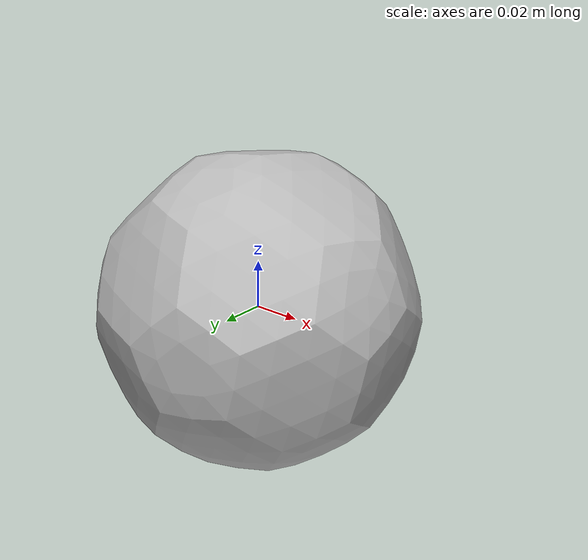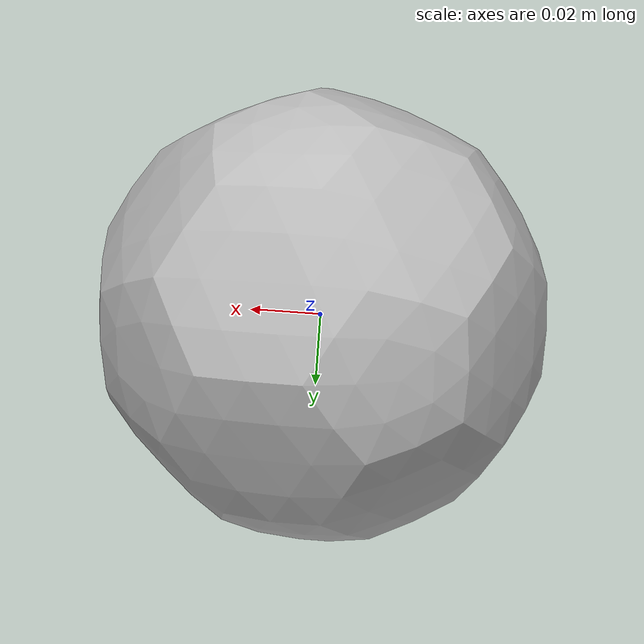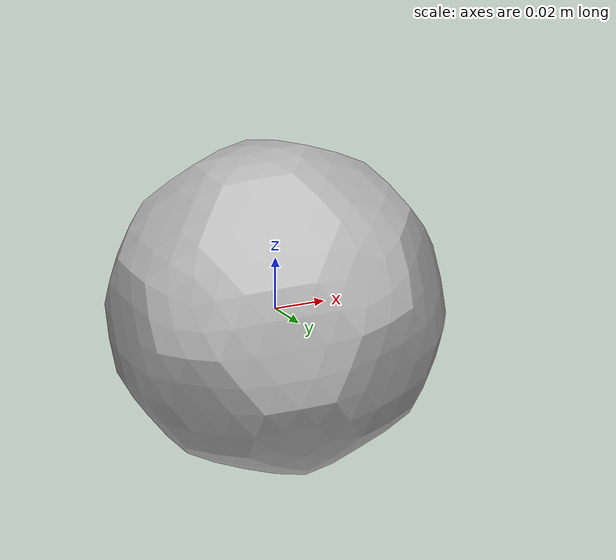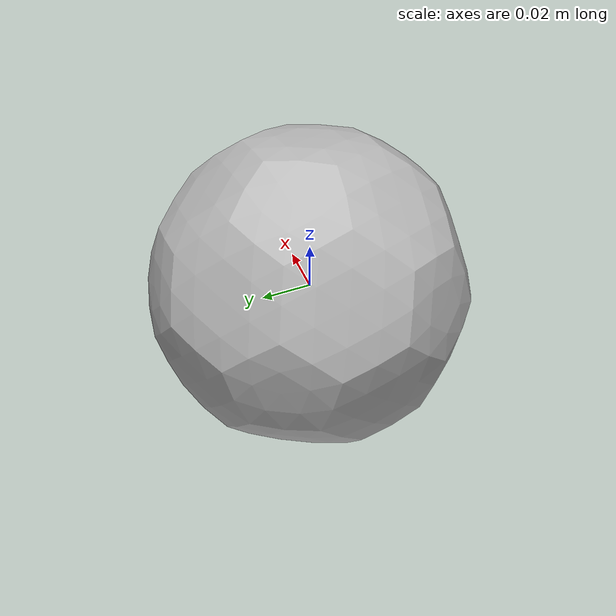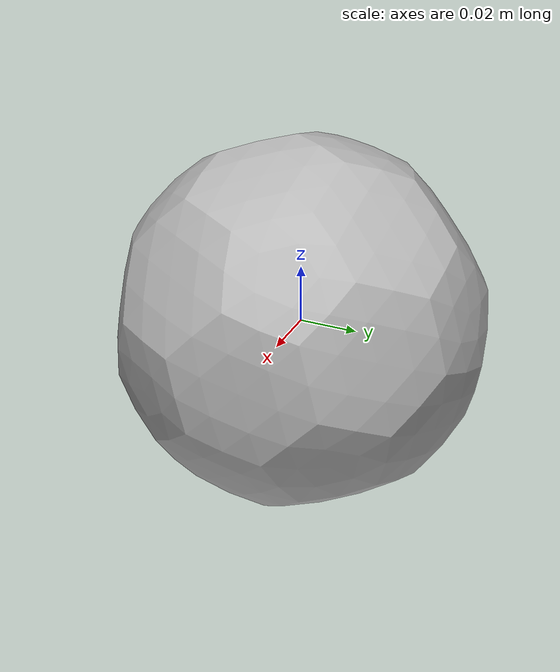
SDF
<?xml version="1.0" ?>
<sdf version="1.5">
  <model name="soccer_ball">
    <static>false</static>
    <link name="soccer_ball_link">
      <pose>0 0 0 0 0 0</pose>
      <inertial>
        <mass>0.05459</mass>
        <inertia>
          <ixx>0.0000895</ixx>
          <iyy>0.0000895</iyy>
          <izz>0.0000895</izz>
          <ixy>0</ixy>
          <ixz>0</ixz>
          <iyz>0</iyz>
        </inertia>
      </inertial>
      <collision name="collision">
        <geometry>
          <sphere>
            <radius>0.064</radius>
          </sphere>
        </geometry>
      </collision>
      <visual name="visual">
        <geometry>
          <mesh>
            <scale>0.064 0.064 0.064</scale>
            <uri>model://robocup_3Dsim_ball/meshes/ball.dae</uri>
          </mesh>
        </geometry>
      </visual>
    </link>
  </model>
</sdf>
